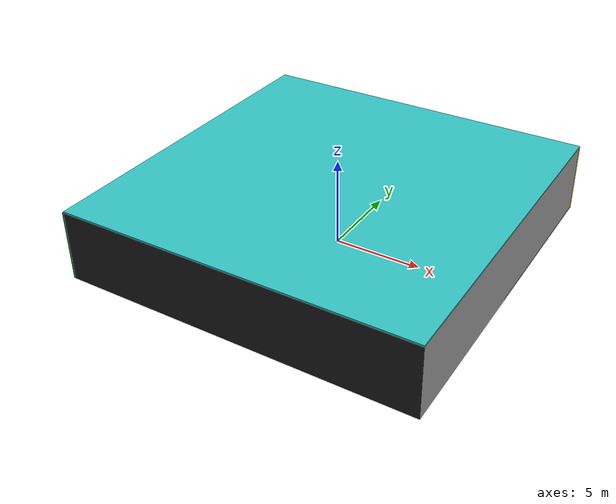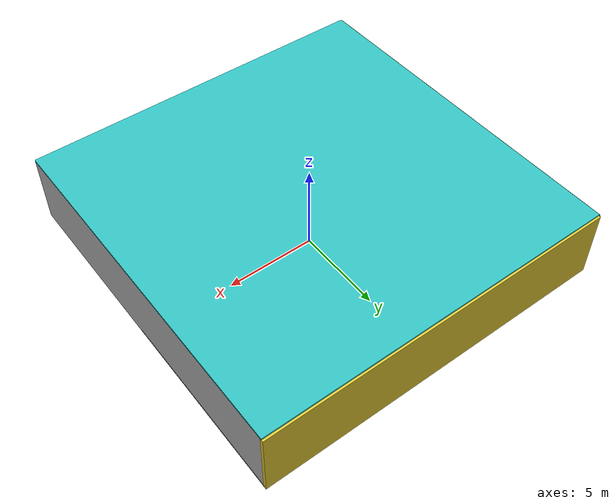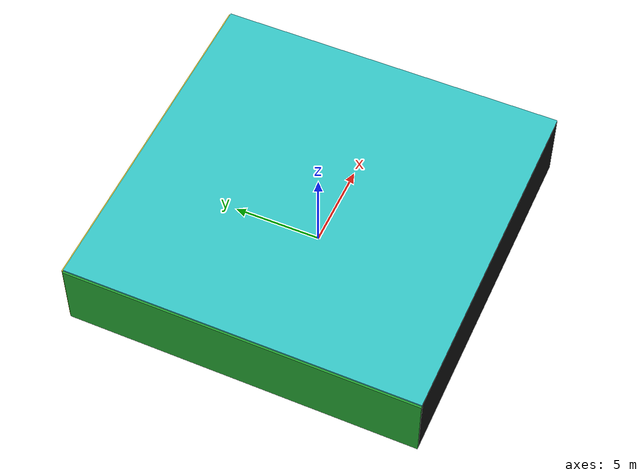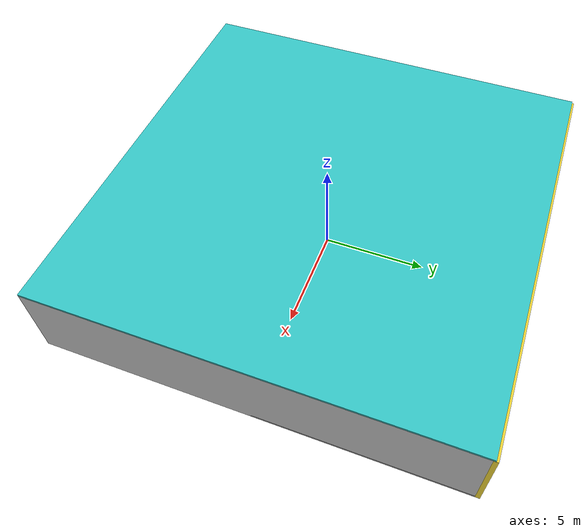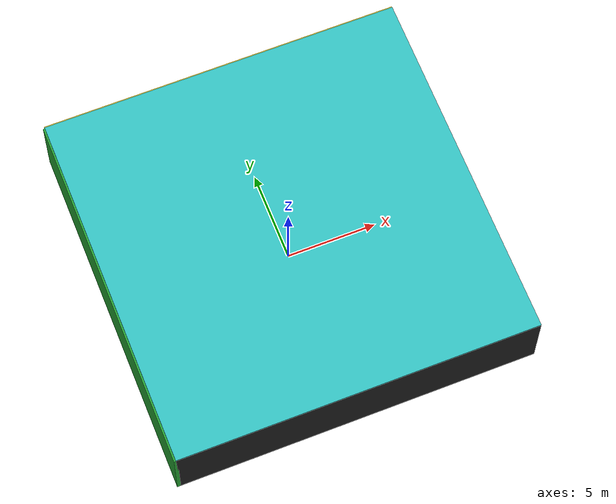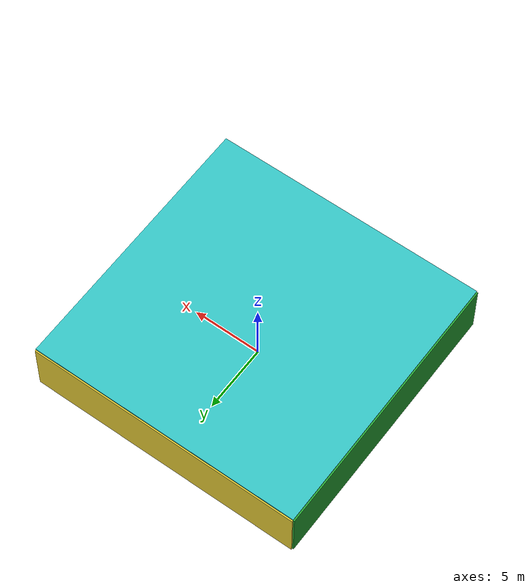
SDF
<sdf version="1.4">
 <world name="default">
  <physics type="ode">
   <max_step_size>0.001</max_step_size>
   <real_time_factor>1</real_time_factor>
   <real_time_update_rate>1000</real_time_update_rate>
   <gravity>0 0 -9.8</gravity>
  </physics>
  <scene><ambient>0.4 0.4 0.4 1</ambient><background>0.7 0.7 0.7 1</background><shadows>1</shadows></scene>
  <model name="Surrounding">
   <static>1</static>
   <link name="Ceiling">
    <collision name="Ceiling_Collision"><geometry><box><size>20 20 0.1</size></box></geometry></collision>
    <visual name="Ceiling_Visual">
     <geometry><box><size>20 20 0.1</size></box></geometry>
     <material>
      <script><uri>file://media/materials/scripts/gazebo.material</uri><name>Gazebo/TurquoiseGlow</name></script>
     </material>
    </visual>
    <pose>0 0 4.05 0 0 0</pose>
   </link>
   <link name="Wall_South">
    <collision name="Wall_South_Collision">
     <geometry><box><size>20 0 4</size></box></geometry>
     <pose>0 0 2 0 -0 0</pose>
    </collision>
    <visual name="Wall_South_Visual">
     <pose>0 0 2 0 -0 0</pose>
     <geometry><box><size>20 0 4</size></box></geometry>
     <material>
      <script><uri>file://media/materials/scripts/gazebo.material</uri><name>Gazebo/Black</name></script>
     </material>
    </visual>
    <velocity_decay><linear>0</linear><angular>0</angular></velocity_decay>
    <pose>0 -10 0 0 -0 0</pose>
   </link>
   <link name="Wall_East">
    <collision name="Wall_21_Collision">
     <geometry><box><size>20 0 4</size></box></geometry>
     <pose>0 0 2 0 -0 0</pose>
    </collision>
    <visual name="Wall_21_Visual">
     <pose>0 0 2 0 -0 0</pose>
     <geometry><box><size>20 0 4</size></box></geometry>
     <material>
      <script><uri>file://media/materials/scripts/gazebo.material</uri><name>Gazebo/PioneerBody</name></script>
     </material>
    </visual>
    <velocity_decay><linear>0</linear><angular>0</angular></velocity_decay>
    <pose>10 0 0 0 -0 1.5708</pose>
   </link>
   <link name="Wall_North">
    <collision name="Wall_22_Collision">
     <geometry><box><size>20 0.2 4</size></box></geometry>
     <pose>0 0 2 0 -0 0</pose>
    </collision>
    <visual name="Wall_22_Visual">
     <pose>0 0 2 0 -0 0</pose>
     <geometry><box><size>20 0.2 4</size></box></geometry>
     <material>
      <script><uri>file://media/materials/scripts/gazebo.material</uri><name>Gazebo/ZincYellow</name></script>
     </material>
    </visual>
    <velocity_decay><linear>0</linear><angular>0</angular></velocity_decay>
    <pose>0 10 0 0 -0 0</pose>
   </link>
   <link name="Wall_West">
    <collision name="Wall_23_Collision">
     <geometry><box><size>20 0.2 4</size></box></geometry>
     <pose>0 0 2 0 -0 0</pose>
    </collision>
    <visual name="Wall_23_Visual">
     <pose>0 0 2 0 -0 0</pose>
     <geometry><box><size>20 0.2 4</size></box></geometry>
     <material>
      <script><uri>file://media/materials/scripts/gazebo.material</uri><name>Gazebo/Green</name></script>
     </material>
    </visual>
    <velocity_decay><linear>0</linear><angular>0</angular></velocity_decay>
    <pose>-10 0 0 0 0 -1.5708</pose>
   </link>
   <link name="Ground_link">
    <collision name="collision">
     <pose>0 0 .05 0 -0 0</pose>
     <geometry><box><size>20 20 0.1</size></box></geometry>
    </collision>
    <visual name="visual">
     <pose>0 0 .05 0 -0 0</pose>
     <geometry><box><size>20 20 0.1</size></box></geometry>
     <material>
      <script><uri>file://media/materials/scripts/gazebo.material</uri><name>Gazebo/GreyGradientSky</name></script>
     </material>
    </visual>
   </link>
   <static>1</static>
  </model>
  <spherical_coordinates>
   <surface_model>EARTH_WGS84</surface_model>
   <latitude_deg>0</latitude_deg>
   <longitude_deg>0</longitude_deg>
   <elevation>0</elevation>
   <heading_deg>0</heading_deg>
  </spherical_coordinates>
  <light name="lightball_0" type="diffuse">
   <diffuse>0.8 0.8 0.8 1</diffuse>
   <specular>0.2 0.2 0.2 1</specular>
   <attenuation>
    <range>100</range>
    <constant>0.7</constant>
    <linear>0.01</linear>
    <quadratic>0.001</quadratic>
   </attenuation>
   <direction>-0.5 0.1 -0.9</direction>
   <pose>-4.06697739246 9.38838181758 2.42628539709 0 0 0</pose>
  </light>
  <light name="lightball_1" type="diffuse">
   <diffuse>0.8 0.8 0.8 1</diffuse>
   <specular>0.2 0.2 0.2 1</specular>
   <attenuation>
    <range>100</range>
    <constant>0.7</constant>
    <linear>0.01</linear>
    <quadratic>0.001</quadratic>
   </attenuation>
   <direction>-0.5 0.1 -0.9</direction>
   <pose>-5.5207906571 -4.18734913723 0.561761547669 0 0 0</pose>
  </light>
  <light name="lightball_2" type="diffuse">
   <diffuse>0.8 0.8 0.8 1</diffuse>
   <specular>0.2 0.2 0.2 1</specular>
   <attenuation>
    <range>100</range>
    <constant>0.7</constant>
    <linear>0.01</linear>
    <quadratic>0.001</quadratic>
   </attenuation>
   <direction>-0.5 0.1 -0.9</direction>
   <pose>-5.04022333672 -8.52562428625 1.92902767494 0 0 0</pose>
  </light>
  <light name="lightball_3" type="diffuse">
   <diffuse>0.8 0.8 0.8 1</diffuse>
   <specular>0.2 0.2 0.2 1</specular>
   <attenuation>
    <range>100</range>
    <constant>0.7</constant>
    <linear>0.01</linear>
    <quadratic>0.001</quadratic>
   </attenuation>
   <direction>-0.5 0.1 -0.9</direction>
   <pose>-0.70048713028 2.0840324915 1.36767358985 0 0 0</pose>
  </light>
  <light name="lightball_4" type="diffuse">
   <diffuse>0.8 0.8 0.8 1</diffuse>
   <specular>0.2 0.2 0.2 1</specular>
   <attenuation>
    <range>100</range>
    <constant>0.7</constant>
    <linear>0.01</linear>
    <quadratic>0.001</quadratic>
   </attenuation>
   <direction>-0.5 0.1 -0.9</direction>
   <pose>-2.57854565228 -7.69728925546 3.15701906164 0 0 0</pose>
  </light>
  <light name="lightball_5" type="diffuse">
   <diffuse>0.8 0.8 0.8 1</diffuse>
   <specular>0.2 0.2 0.2 1</specular>
   <attenuation>
    <range>100</range>
    <constant>0.7</constant>
    <linear>0.01</linear>
    <quadratic>0.001</quadratic>
   </attenuation>
   <direction>-0.5 0.1 -0.9</direction>
   <pose>-6.18683098488 -4.65396746661 3.12464590305 0 0 0</pose>
  </light>
  <light name="lightball_6" type="diffuse">
   <diffuse>0.8 0.8 0.8 1</diffuse>
   <specular>0.2 0.2 0.2 1</specular>
   <attenuation>
    <range>100</range>
    <constant>0.7</constant>
    <linear>0.01</linear>
    <quadratic>0.001</quadratic>
   </attenuation>
   <direction>-0.5 0.1 -0.9</direction>
   <pose>8.83909692786 3.05931963387 1.16705461596 0 0 0</pose>
  </light>
  <light name="lightball_7" type="diffuse">
   <diffuse>0.8 0.8 0.8 1</diffuse>
   <specular>0.2 0.2 0.2 1</specular>
   <attenuation>
    <range>100</range>
    <constant>0.7</constant>
    <linear>0.01</linear>
    <quadratic>0.001</quadratic>
   </attenuation>
   <direction>-0.5 0.1 -0.9</direction>
   <pose>8.00824952159 -2.84952260908 0.815987663319 0 0 0</pose>
  </light>
  <light name="lightball_8" type="diffuse">
   <diffuse>0.8 0.8 0.8 1</diffuse>
   <specular>0.2 0.2 0.2 1</specular>
   <attenuation>
    <range>100</range>
    <constant>0.7</constant>
    <linear>0.01</linear>
    <quadratic>0.001</quadratic>
   </attenuation>
   <direction>-0.5 0.1 -0.9</direction>
   <pose>-5.23388563806 0.533767099247 3.77595905947 0 0 0</pose>
  </light>
  <include>
   <uri>model://robocup_3Dsim_goal</uri>
   <pose>-8.02891895688 -1.96065385655 0 0 0 1.39710732864</pose>
  </include>
  <include><uri>model://table</uri><pose>-7.75383030485 1.26719093075 0 0 0 0.885458003907</pose></include>
  <include>
   <uri>model://robocup_3Dsim_goal</uri>
   <pose>-5.53798865863 2.60238181253 0 0 0 1.08864945746</pose>
  </include>
  <include>
   <uri>model://construction_cone</uri>
   <pose>1.99587209181 -3.66981135887 0 0 0 0.0117104004276</pose>
  </include>
 </world>
</sdf>

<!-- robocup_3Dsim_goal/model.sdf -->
<sdf version="1.5">
  <model name="robocup_3d_goal">
    <static>true</static>
    <link name="left_post">
      <pose>0 1.05 0.45 0 0 0</pose>
      <collision name="collision">
        <geometry>
          <cylinder>
            <radius>0.05</radius>
            <length>0.9</length>
          </cylinder>
        </geometry>
      </collision>
      <visual name="visual">
        <geometry>
          <cylinder>
            <radius>0.05</radius>
            <length>0.9</length>
          </cylinder>
        </geometry>
        <material>
          <script>
            <uri>file://media/materials/scripts/gazebo.material</uri>
            <name>Gazebo/ZincYellow</name>
          </script>
        </material>
      </visual>
    </link>
    <link name="left_support_horiz_lower">
      <pose>0.30 1.05 0.01 0 0 0</pose>
      <collision name="collision">
        <geometry>
          <box>
            <size>0.50 0.02 0.02</size>
          </box>
        </geometry>
      </collision>
      <visual name="visual">
        <geometry>
          <box>
            <size>0.50 0.02 0.02</size>
          </box>
        </geometry>
        <material>
          <script>
            <uri>file://media/materials/scripts/gazebo.material</uri>
            <name>Gazebo/White</name>
          </script>
        </material>
      </visual>
    </link>
    <link name="left_support_horiz_upper">
      <pose>0.30 1.05 0.79 0 0 0</pose>
      <collision name="collision">
        <geometry>
          <box>
            <size>0.50 0.02 0.02</size>
          </box>
        </geometry>
      </collision>
      <visual name="visual">
        <geometry>
          <box>
            <size>0.50 0.02 0.02</size>
          </box>
        </geometry>
        <material>
          <script>
            <uri>file://media/materials/scripts/gazebo.material</uri>
            <name>Gazebo/White</name>
          </script>
        </material>
      </visual>
    </link>
    <link name="left_support_vertical">
      <pose>0.56 1.05 0.4 0 1.5708 0</pose>
      <collision name="collision">
        <geometry>
          <box>
            <size>0.80 0.02 0.02</size>
          </box>
        </geometry>
      </collision>
      <visual name="visual">
        <geometry>
          <box>
            <size>0.80 0.02 0.02</size>
          </box>
        </geometry>
        <material>
          <script>
            <uri>file://media/materials/scripts/gazebo.material</uri>
            <name>Gazebo/White</name>
          </script>
        </material>
      </visual>
    </link>
    <link name="right_support_horiz_lower">
      <pose>0.30 -1.05 0.01 0 0 0</pose>
      <collision name="collision">
        <geometry>
          <box>
            <size>0.50 0.02 0.02</size>
          </box>
        </geometry>
      </collision>
      <visual name="visual">
        <geometry>
          <box>
            <size>0.50 0.02 0.02</size>
          </box>
        </geometry>
        <material>
          <script>
            <uri>file://media/materials/scripts/gazebo.material</uri>
            <name>Gazebo/White</name>
          </script>
        </material>
      </visual>
    </link>
    <link name="right_support_horiz_upper">
      <pose>0.30 -1.05 0.79 0 0 0</pose>
      <collision name="collision">
        <geometry>
          <box>
            <size>0.50 0.02 0.02</size>
          </box>
        </geometry>
      </collision>
      <visual name="visual">
        <geometry>
          <box>
            <size>0.50 0.02 0.02</size>
          </box>
        </geometry>
        <material>
          <script>
            <uri>file://media/materials/scripts/gazebo.material</uri>
            <name>Gazebo/White</name>
          </script>
        </material>
      </visual>
    </link>
    <link name="right_support_vertical">
      <pose>0.56 -1.05 0.4 0 1.5708 0</pose>
      <collision name="collision">
        <geometry>
          <box>
            <size>0.80 0.02 0.02</size>
          </box>
        </geometry>
      </collision>
      <visual name="visual">
        <geometry>
          <box>
            <size>0.80 0.02 0.02</size>
          </box>
        </geometry>
        <material>
          <script>
            <uri>file://media/materials/scripts/gazebo.material</uri>
            <name>Gazebo/White</name>
          </script>
        </material>
      </visual>
    </link>
    <link name="center_support_horiz_lower">
      <pose>0.56 0 0.01 0 1.5708 0</pose>
      <collision name="collision">
        <geometry>
          <box>
            <size>0.02 2.08 0.02</size>
          </box>
        </geometry>
      </collision>
      <visual name="visual">
        <geometry>
          <box>
            <size>0.02 2.08 0.02</size>
          </box>
        </geometry>
        <material>
          <script>
            <uri>file://media/materials/scripts/gazebo.material</uri>
            <name>Gazebo/White</name>
          </script>
        </material>
      </visual>
    </link>
    <link name="center_support_horiz_upper">
      <pose>0.56 0 0.79 0 1.5708 0</pose>
      <collision name="collision">
        <geometry>
          <box>
            <size>0.02 2.08 0.02</size>
          </box>
        </geometry>
      </collision>
      <visual name="visual">
        <geometry>
          <box>
            <size>0.02 2.08 0.02</size>
          </box>
        </geometry>
        <material>
          <script>
            <uri>file://media/materials/scripts/gazebo.material</uri>
            <name>Gazebo/White</name>
          </script>
        </material>
      </visual>
    </link>
    <link name="right_post">
      <pose>0 -1.05 0.45 0 0 0</pose>
      <collision name="collision">
        <geometry>
          <cylinder>
            <radius>0.05</radius>
            <length>0.9</length>
          </cylinder>
        </geometry>
      </collision>
      <visual name="visual">
        <geometry>
          <cylinder>
            <radius>0.05</radius>
            <length>0.9</length>
          </cylinder>
        </geometry>
        <material>
          <script>
            <uri>file://media/materials/scripts/gazebo.material</uri>
            <name>Gazebo/ZincYellow</name>
          </script>
        </material>
      </visual>
    </link>
    <link name="crossbar">
      <pose>0 0 0.85 1.57 1.57 0</pose>
      <collision name="collision">
        <geometry>
          <cylinder>
            <radius>0.05</radius>
            <length>2.0</length>
          </cylinder>
        </geometry>
      </collision>
      <visual name="visual">
        <geometry>
          <cylinder>
            <radius>0.05</radius>
            <length>2.0</length>
          </cylinder>
        </geometry>
        <material>
          <script>
            <uri>file://media/materials/scripts/gazebo.material</uri>
            <name>Gazebo/ZincYellow</name>
          </script>
        </material>
      </visual>
    </link>
    <link name="center_net">
      <pose>0.56 0 0.40 0 0 0</pose>
      <collision name="collision">
        <geometry>
          <box>
            <size>0.01 2.1 0.80</size>
          </box>
        </geometry>
      </collision>
      <visual name="visual">
        <geometry>
          <box>
            <size>0.01 2.1 0.80</size>
          </box>
        </geometry>
        <material>
          <script>
            <uri>model://../model_source/models/robocup09_spl_field/materials/scripts/</uri>
            <uri>model://../model_source/models/robocup09_spl_field/materials/textures/</uri>
            <name>RoboCup/Net</name>
          </script>
        </material>
      </visual>
    </link>
    <link name="left_net">
      <pose>0.30 1.05 0.40 0 0 0</pose>
      <collision name="collision">
        <geometry>
          <box>
            <size>0.50 0.01 0.76</size>
          </box>
        </geometry>
      </collision>
      <visual name="visual">
        <geometry>
          <box>
            <size>0.50 0.01 0.76</size>
          </box>
        </geometry>
        <material>
          <script>
            <uri>model://../model_source/models/robocup09_spl_field/materials/scripts/</uri>
            <uri>model://../model_source/models/robocup09_spl_field/materials/textures/</uri>
            <name>RoboCup/Net</name>
          </script>
        </material>
      </visual>
    </link>
    <link name="right_net">
      <pose>0.30 -1.05 0.40 0 0 0</pose>
      <collision name="collision">
        <geometry>
          <box>
            <size>0.50 0.01 0.76</size>
          </box>
        </geometry>
      </collision>
      <visual name="visual">
        <geometry>
          <box>
            <size>0.50 0.01 0.76</size>
          </box>
        </geometry>
        <material>
          <script>
            <uri>model://../model_source/models/robocup09_spl_field/materials/scripts/</uri>
            <uri>model://../model_source/models/robocup09_spl_field/materials/textures/</uri>
            <name>RoboCup/Net</name>
          </script>
        </material>
      </visual>
    </link>
  </model>
</sdf>

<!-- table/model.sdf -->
<sdf version="1.5">
  <model name="table">
    <static>true</static>
    <link name="link">
      <collision name="surface">
        <pose>0 0 1.0 0 0 0</pose>
        <geometry>
          <box>
            <size>1.5 0.8 0.03</size>
          </box>
        </geometry>
        <surface>
          <friction>
            <ode>
              <mu>0.6</mu>
              <mu2>0.6</mu2>
            </ode>
          </friction>
        </surface>
      </collision>
      <visual name="visual1">
        <pose>0 0 1.0 0 0 0</pose>
        <geometry>
          <box>
            <size>1.5 0.8 0.03</size>
          </box>
        </geometry>
        <material>
          <script>
            <uri>model://media/materials/scripts/gazebo.material</uri>
            <name>Gazebo/Wood</name>
          </script>
        </material>
      </visual>
      <collision name="front_left_leg">
        <pose>0.68 0.38 0.5 0 0 0</pose>
        <geometry>
          <cylinder>
            <radius>0.02</radius>
            <length>1.0</length>
          </cylinder>
        </geometry>
      </collision>
      <visual name="front_left_leg">
        <pose>0.68 0.38 0.5 0 0 0</pose>
        <geometry>
          <cylinder>
            <radius>0.02</radius>
            <length>1.0</length>
          </cylinder>
        </geometry>
        <material>
          <script>
            <uri>model://media/materials/scripts/gazebo.material</uri>
            <name>Gazebo/Grey</name>
          </script>
        </material>
      </visual>
      <collision name="front_right_leg">
        <pose>0.68 -0.38 0.5 0 0 0</pose>
        <geometry>
          <cylinder>
            <radius>0.02</radius>
            <length>1.0</length>
          </cylinder>
        </geometry>
      </collision>
      <visual name="front_right_leg">
        <pose>0.68 -0.38 0.5 0 0 0</pose>
        <geometry>
          <cylinder>
            <radius>0.02</radius>
            <length>1.0</length>
          </cylinder>
        </geometry>
        <material>
          <script>
            <uri>model://media/materials/scripts/gazebo.material</uri>
            <name>Gazebo/Grey</name>
          </script>
        </material>
      </visual>
      <collision name="back_right_leg">
        <pose>-0.68 -0.38 0.5 0 0 0</pose>
        <geometry>
          <cylinder>
            <radius>0.02</radius>
            <length>1.0</length>
          </cylinder>
        </geometry>
      </collision>
      <visual name="back_right_leg">
        <pose>-0.68 -0.38 0.5 0 0 0</pose>
        <geometry>
          <cylinder>
            <radius>0.02</radius>
            <length>1.0</length>
          </cylinder>
        </geometry>
        <material>
          <script>
            <uri>model://media/materials/scripts/gazebo.material</uri>
            <name>Gazebo/Grey</name>
          </script>
        </material>
      </visual>
      <collision name="back_left_leg">
        <pose>-0.68 0.38 0.5 0 0 0</pose>
        <geometry>
          <cylinder>
            <radius>0.02</radius>
            <length>1.0</length>
          </cylinder>
        </geometry>
      </collision>
      <visual name="back_left_leg">
        <pose>-0.68 0.38 0.5 0 0 0</pose>
        <geometry>
          <cylinder>
            <radius>0.02</radius>
            <length>1.0</length>
          </cylinder>
        </geometry>
        <material>
          <script>
            <uri>model://media/materials/scripts/gazebo.material</uri>
            <name>Gazebo/Grey</name>
          </script>
        </material>
      </visual>
    </link>
  </model>
</sdf>

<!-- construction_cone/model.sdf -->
<sdf version="1.5">
  <model name="Construction Cone">
    <link name="link">
      <collision name="collision">
        <geometry>
          <mesh>
            <scale>10 10 10</scale>
            <uri>file://isr-testbed/construction_cone/meshes/construction_cone.dae</uri>
          </mesh>
        </geometry>
      </collision>
      <visual name="visual">
        <geometry>
          <mesh>
            <scale>10 10 10</scale>
            <uri>file://isr-testbed/construction_cone/meshes/construction_cone.dae</uri>
          </mesh>
        </geometry>
      </visual>
    </link>
  </model>
</sdf>
